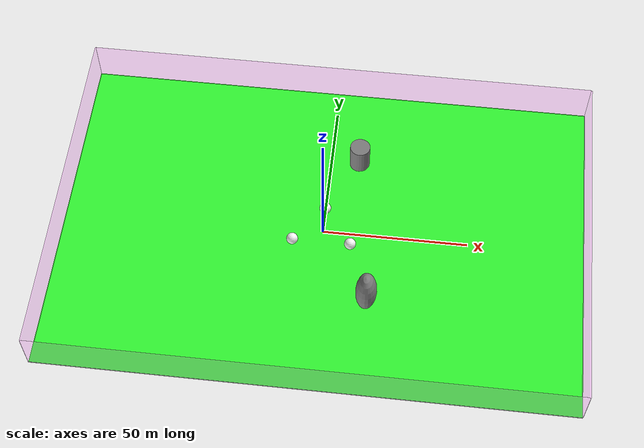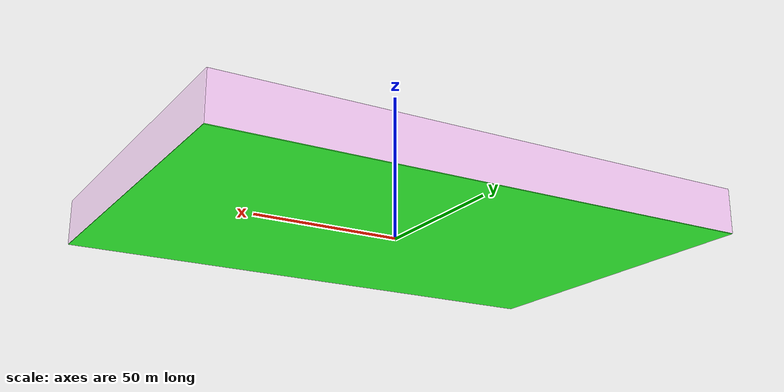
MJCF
<?xml version="1.0"?>
<mujoco>
    <option gravity="0 0 -9.81" integrator="RK4" timestep="0.02">
        <flag frictionloss="disable"/>
    </option>
    <worldbody>
        <body name="robot" pos="10 0 0">
            <joint axis="1 0 0" damping="0.5" name="slide_robot_x" pos="0 0 0" type="slide"/>
            <joint axis="0 1 0" damping="0.5" name="slide_robot_y" pos="0 0 0" type="slide"/>
            <joint axis="0 0 1" damping="1.0" name="slide_robot_z" pos="0 0 0" type="slide"/>
            <geom mass="25.0" pos="0 30 5" rgba="0.5 0.5 0.5 1.0" size="3.5 5.0" type="cylinder"/>
        </body>

        <body name="ball" pos="10 -5 0">
            <joint type="free"/>
            <geom condim="3" mass="1.0"  pos="0 0 2" rgba="1 1 10 1" size="2.0" type="sphere"/>
        </body>

        <body name="ball2" pos="-10 -5 0">
            <joint type="free"/>
            <geom condim="3" mass="1.0" pos="0 0 2" rgba="1 10 1 1" size="2.0" type="sphere"/>
        </body>

        <body name="ball3" pos="0 8.5 0">
            <joint type="free"/>
            <geom condim="3" mass="1.0" pos="0 0 2" rgba="10 1 1 1" size="2.0" type="sphere"/>
        </body>

        <body name="robot2" pos="7.5 0 10">
            <joint type="free"/>
            <geom mass="25.0" pos="10 -30 5" rgba="0.5 0.5 0.5 1.0" size="3.5 5.0 8.0" type="ellipsoid"/>
        </body>

        <body name="floor" pos="0 0 -0.1">
            <geom condim="3" size="90 60 0.1" friction="0.5 0.5 0.5" rgba="0.2 1.5 0.2 1" type="box"/>
        </body>

        <body name="wall1" pos="0 60 7.5">
            <geom condim="3" size="90 0.2 7.5" friction="0.0 0.0 0.0" rgba="1.5 0.2 2.5 0.2" type="box"/>
        </body>

        <body name="wall2" pos="90 0 7.5">
            <geom condim="3" size="0.2 60 7.5" friction="0.0 0.0 0.0" rgba="1.5 0.2 2.5 0.2" type="box"/>
        </body>

        <body name="wall3" pos="-90 0 7.5">
            <geom condim="3" size="0.2 60 7.5" friction="0.0 0.0 0.0" rgba="1.5 0.2 2.5 0.2" type="box"/>
        </body>

        <body name="wall4" pos="0 -60 7.5">
            <geom condim="3" size="90 0.2 7.5" friction="0.0 0.0 0.0" rgba="1.5 0.2 2.5 0.2" type="box"/>
        </body>

    </worldbody>
    <actuator>
        <velocity gear="25.0" joint="slide_robot_x"/>
        <velocity gear="25.0" joint="slide_robot_y"/>
        <velocity gear="10.0" joint="slide_robot_z"/>
    </actuator>
</mujoco>
